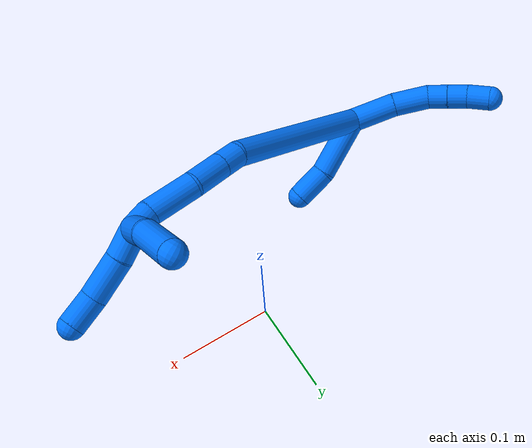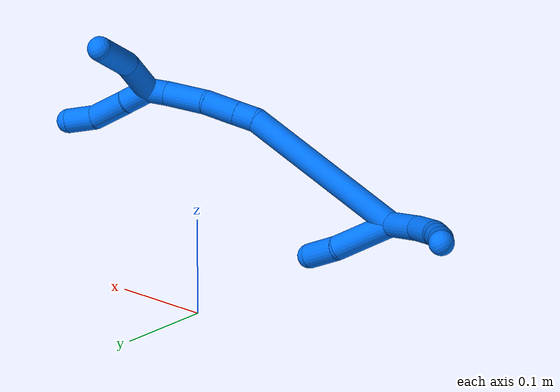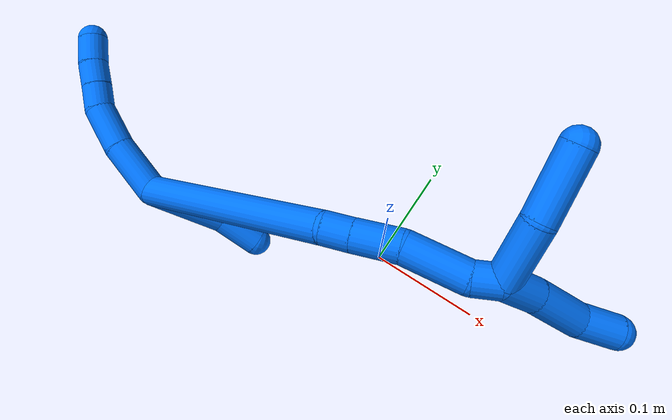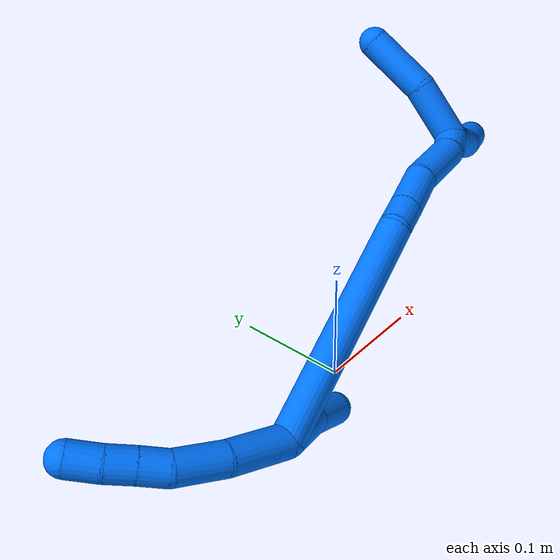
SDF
<sdf version="1.7">
 <world name="default">
  <model name="14">
   <static>0</static>
   <link name="14">
    <collision name="collision-cylinder-e_1_2_8">
     <pose>-0.006566 0.013766 0.017989 -0.653214 -0.282148 0.096139</pose>
     <geometry><cylinder><radius>0.0125</radius><length>0.047169</length></cylinder></geometry>
     <surface>
      <friction><ode><mu>1.16</mu><mu2>1.16</mu2><slip1>0</slip1><slip2>0</slip2></ode></friction>
      <contact><ode><kp>1e+06</kp><kd>1</kd><max_vel>0</max_vel><min_depth>0.001</min_depth></ode></contact>
     </surface>
    </collision>
    <visual name="visual-cylinder-e_1_2_8">
     <pose>-0.006566 0.013766 0.017989 -0.653214 -0.282148 0.096139</pose>
     <geometry><cylinder><radius>0.0125</radius><length>0.047169</length></cylinder></geometry>
     <material><ambient>0 0.462745 1 1</ambient></material>
    </visual>
    <collision name="collision-cylinder-e_2_8_9">
     <pose>-0.017922 0.040923 0.04838 -0.823649 -0.256633 0.112598</pose>
     <geometry><cylinder><radius>0.0125</radius><length>0.03774</length></cylinder></geometry>
     <surface>
      <friction><ode><mu>1.16</mu><mu2>1.16</mu2><slip1>0</slip1><slip2>0</slip2></ode></friction>
      <contact><ode><kp>1e+06</kp><kd>1</kd><max_vel>0</max_vel><min_depth>0.001</min_depth></ode></contact>
     </surface>
    </collision>
    <visual name="visual-cylinder-e_2_8_9">
     <pose>-0.017922 0.040923 0.04838 -0.823649 -0.256633 0.112598</pose>
     <geometry><cylinder><radius>0.0125</radius><length>0.03774</length></cylinder></geometry>
     <material><ambient>0 0.462745 1 1</ambient></material>
    </visual>
    <collision name="collision-cylinder-e_3_9_10">
     <pose>-0.02396 0.063652 0.06533 -1.11778 -0.119592 0.074848</pose>
     <geometry><cylinder><radius>0.0125</radius><length>0.020922</length></cylinder></geometry>
     <surface>
      <friction><ode><mu>1.16</mu><mu2>1.16</mu2><slip1>0</slip1><slip2>0</slip2></ode></friction>
      <contact><ode><kp>1e+06</kp><kd>1</kd><max_vel>0</max_vel><min_depth>0.001</min_depth></ode></contact>
     </surface>
    </collision>
    <visual name="visual-cylinder-e_3_9_10">
     <pose>-0.02396 0.063652 0.06533 -1.11778 -0.119592 0.074848</pose>
     <geometry><cylinder><radius>0.0125</radius><length>0.020922</length></cylinder></geometry>
     <material><ambient>0 0.462745 1 1</ambient></material>
    </visual>
    <collision name="collision-cylinder-e_4_10_11">
     <pose>-0.026777 0.082072 0.074468 -1.10263 -0.152938 0.094159</pose>
     <geometry><cylinder><radius>0.0125</radius><length>0.020592</length></cylinder></geometry>
     <surface>
      <friction><ode><mu>1.16</mu><mu2>1.16</mu2><slip1>0</slip1><slip2>0</slip2></ode></friction>
      <contact><ode><kp>1e+06</kp><kd>1</kd><max_vel>0</max_vel><min_depth>0.001</min_depth></ode></contact>
     </surface>
    </collision>
    <visual name="visual-cylinder-e_4_10_11">
     <pose>-0.026777 0.082072 0.074468 -1.10263 -0.152938 0.094159</pose>
     <geometry><cylinder><radius>0.0125</radius><length>0.020592</length></cylinder></geometry>
     <material><ambient>0 0.462745 1 1</ambient></material>
    </visual>
    <collision name="collision-cylinder-e_5_11_6">
     <pose>-0.029752 0.102148 0.083073 -1.2208 -0.119565 0.083688</pose>
     <geometry><cylinder><radius>0.0125</radius><length>0.023576</length></cylinder></geometry>
     <surface>
      <friction><ode><mu>1.16</mu><mu2>1.16</mu2><slip1>0</slip1><slip2>0</slip2></ode></friction>
      <contact><ode><kp>1e+06</kp><kd>1</kd><max_vel>0</max_vel><min_depth>0.001</min_depth></ode></contact>
     </surface>
    </collision>
    <visual name="visual-cylinder-e_5_11_6">
     <pose>-0.029752 0.102148 0.083073 -1.2208 -0.119565 0.083688</pose>
     <geometry><cylinder><radius>0.0125</radius><length>0.023576</length></cylinder></geometry>
     <material><ambient>0 0.462745 1 1</ambient></material>
    </visual>
    <collision name="collision-cylinder-e_1_2_12">
     <pose>-0.000113 -0.000426 -0.031971 3.12826 -0.003523 -0.516548</pose>
     <geometry><cylinder><radius>0.0125</radius><length>0.063947</length></cylinder></geometry>
     <surface>
      <friction><ode><mu>1.16</mu><mu2>1.16</mu2><slip1>0</slip1><slip2>0</slip2></ode></friction>
      <contact><ode><kp>1e+06</kp><kd>1</kd><max_vel>0</max_vel><min_depth>0.001</min_depth></ode></contact>
     </surface>
    </collision>
    <visual name="visual-cylinder-e_1_2_12">
     <pose>-0.000113 -0.000426 -0.031971 3.12826 -0.003523 -0.516548</pose>
     <geometry><cylinder><radius>0.0125</radius><length>0.063947</length></cylinder></geometry>
     <material><ambient>0 0.462745 1 1</ambient></material>
    </visual>
    <collision name="collision-cylinder-e_2_12_5">
     <pose>0.001444 -0.005496 -0.081279 2.87991 0.092733 0.677988</pose>
     <geometry><cylinder><radius>0.0125</radius><length>0.036053</length></cylinder></geometry>
     <surface>
      <friction><ode><mu>1.16</mu><mu2>1.16</mu2><slip1>0</slip1><slip2>0</slip2></ode></friction>
      <contact><ode><kp>1e+06</kp><kd>1</kd><max_vel>0</max_vel><min_depth>0.001</min_depth></ode></contact>
     </surface>
    </collision>
    <visual name="visual-cylinder-e_2_12_5">
     <pose>0.001444 -0.005496 -0.081279 2.87991 0.092733 0.677988</pose>
     <geometry><cylinder><radius>0.0125</radius><length>0.036053</length></cylinder></geometry>
     <material><ambient>0 0.462745 1 1</ambient></material>
    </visual>
    <collision name="collision-cylinder-e_1_2_13">
     <pose>0.074262 -0.006654 -0.046105 2.99825 1.01056 2.88347</pose>
     <geometry><cylinder><radius>0.0125</radius><length>0.175325</length></cylinder></geometry>
     <surface>
      <friction><ode><mu>1.16</mu><mu2>1.16</mu2><slip1>0</slip1><slip2>0</slip2></ode></friction>
      <contact><ode><kp>1e+06</kp><kd>1</kd><max_vel>0</max_vel><min_depth>0.001</min_depth></ode></contact>
     </surface>
    </collision>
    <visual name="visual-cylinder-e_1_2_13">
     <pose>0.074262 -0.006654 -0.046105 2.99825 1.01056 2.88347</pose>
     <geometry><cylinder><radius>0.0125</radius><length>0.175325</length></cylinder></geometry>
     <material><ambient>0 0.462745 1 1</ambient></material>
    </visual>
    <collision name="collision-cylinder-e_2_13_14">
     <pose>0.155563 -0.013743 -0.100517 3.08937 0.702297 2.99926</pose>
     <geometry><cylinder><radius>0.0125</radius><length>0.021795</length></cylinder></geometry>
     <surface>
      <friction><ode><mu>1.16</mu><mu2>1.16</mu2><slip1>0</slip1><slip2>0</slip2></ode></friction>
      <contact><ode><kp>1e+06</kp><kd>1</kd><max_vel>0</max_vel><min_depth>0.001</min_depth></ode></contact>
     </surface>
    </collision>
    <visual name="visual-cylinder-e_2_13_14">
     <pose>0.155563 -0.013743 -0.100517 3.08937 0.702297 2.99926</pose>
     <geometry><cylinder><radius>0.0125</radius><length>0.021795</length></cylinder></geometry>
     <material><ambient>0 0.462745 1 1</ambient></material>
    </visual>
    <collision name="collision-cylinder-e_3_14_15">
     <pose>0.174137 -0.014505 -0.121978 3.11665 0.719751 3.07532</pose>
     <geometry><cylinder><radius>0.0125</radius><length>0.034995</length></cylinder></geometry>
     <surface>
      <friction><ode><mu>1.16</mu><mu2>1.16</mu2><slip1>0</slip1><slip2>0</slip2></ode></friction>
      <contact><ode><kp>1e+06</kp><kd>1</kd><max_vel>0</max_vel><min_depth>0.001</min_depth></ode></contact>
     </surface>
    </collision>
    <visual name="visual-cylinder-e_3_14_15">
     <pose>0.174137 -0.014505 -0.121978 3.11665 0.719751 3.07532</pose>
     <geometry><cylinder><radius>0.0125</radius><length>0.034995</length></cylinder></geometry>
     <material><ambient>0 0.462745 1 1</ambient></material>
    </visual>
    <collision name="collision-cylinder-e_4_15_16">
     <pose>0.197918 -0.019555 -0.154738 2.90527 0.545747 2.33921</pose>
     <geometry><cylinder><radius>0.0125</radius><length>0.047189</length></cylinder></geometry>
     <surface>
      <friction><ode><mu>1.16</mu><mu2>1.16</mu2><slip1>0</slip1><slip2>0</slip2></ode></friction>
      <contact><ode><kp>1e+06</kp><kd>1</kd><max_vel>0</max_vel><min_depth>0.001</min_depth></ode></contact>
     </surface>
    </collision>
    <visual name="visual-cylinder-e_4_15_16">
     <pose>0.197918 -0.019555 -0.154738 2.90527 0.545747 2.33921</pose>
     <geometry><cylinder><radius>0.0125</radius><length>0.047189</length></cylinder></geometry>
     <material><ambient>0 0.462745 1 1</ambient></material>
    </visual>
    <collision name="collision-cylinder-e_5_16_1">
     <pose>0.215845 -0.022945 -0.182891 -2.98697 0.58107 -2.63457</pose>
     <geometry><cylinder><radius>0.0125</radius><length>0.020696</length></cylinder></geometry>
     <surface>
      <friction><ode><mu>1.16</mu><mu2>1.16</mu2><slip1>0</slip1><slip2>0</slip2></ode></friction>
      <contact><ode><kp>1e+06</kp><kd>1</kd><max_vel>0</max_vel><min_depth>0.001</min_depth></ode></contact>
     </surface>
    </collision>
    <visual name="visual-cylinder-e_5_16_1">
     <pose>0.215845 -0.022945 -0.182891 -2.98697 0.58107 -2.63457</pose>
     <geometry><cylinder><radius>0.0125</radius><length>0.020696</length></cylinder></geometry>
     <material><ambient>0 0.462745 1 1</ambient></material>
    </visual>
    <collision name="collision-cylinder-e_1_1_17">
     <pose>0.220972 -0.021606 -0.205574 -3.1411 -0.039127 3.11647</pose>
     <geometry><cylinder><radius>0.0125</radius><length>0.028295</length></cylinder></geometry>
     <surface>
      <friction><ode><mu>1.16</mu><mu2>1.16</mu2><slip1>0</slip1><slip2>0</slip2></ode></friction>
      <contact><ode><kp>1e+06</kp><kd>1</kd><max_vel>0</max_vel><min_depth>0.001</min_depth></ode></contact>
     </surface>
    </collision>
    <visual name="visual-cylinder-e_1_1_17">
     <pose>0.220972 -0.021606 -0.205574 -3.1411 -0.039127 3.11647</pose>
     <geometry><cylinder><radius>0.0125</radius><length>0.028295</length></cylinder></geometry>
     <material><ambient>0 0.462745 1 1</ambient></material>
    </visual>
    <collision name="collision-cylinder-e_2_17_18">
     <pose>0.219942 -0.023951 -0.240181 3.0272 -0.023115 -0.398353</pose>
     <geometry><cylinder><radius>0.0125</radius><length>0.041221</length></cylinder></geometry>
     <surface>
      <friction><ode><mu>1.16</mu><mu2>1.16</mu2><slip1>0</slip1><slip2>0</slip2></ode></friction>
      <contact><ode><kp>1e+06</kp><kd>1</kd><max_vel>0</max_vel><min_depth>0.001</min_depth></ode></contact>
     </surface>
    </collision>
    <visual name="visual-cylinder-e_2_17_18">
     <pose>0.219942 -0.023951 -0.240181 3.0272 -0.023115 -0.398353</pose>
     <geometry><cylinder><radius>0.0125</radius><length>0.041221</length></cylinder></geometry>
     <material><ambient>0 0.462745 1 1</ambient></material>
    </visual>
    <collision name="collision-cylinder-e_3_18_4">
     <pose>0.223526 -0.02636 -0.275343 3.13771 0.269658 3.11296</pose>
     <geometry><cylinder><radius>0.0125</radius><length>0.030484</length></cylinder></geometry>
     <surface>
      <friction><ode><mu>1.16</mu><mu2>1.16</mu2><slip1>0</slip1><slip2>0</slip2></ode></friction>
      <contact><ode><kp>1e+06</kp><kd>1</kd><max_vel>0</max_vel><min_depth>0.001</min_depth></ode></contact>
     </surface>
    </collision>
    <visual name="visual-cylinder-e_3_18_4">
     <pose>0.223526 -0.02636 -0.275343 3.13771 0.269658 3.11296</pose>
     <geometry><cylinder><radius>0.0125</radius><length>0.030484</length></cylinder></geometry>
     <material><ambient>0 0.462745 1 1</ambient></material>
    </visual>
    <collision name="collision-cylinder-e_1_1_19">
     <pose>0.237179 -0.00377 -0.187713 -1.36503 0.709601 -0.584998</pose>
     <geometry><cylinder><radius>0.0125</radius><length>0.048052</length></cylinder></geometry>
     <surface>
      <friction><ode><mu>1.16</mu><mu2>1.16</mu2><slip1>0</slip1><slip2>0</slip2></ode></friction>
      <contact><ode><kp>1e+06</kp><kd>1</kd><max_vel>0</max_vel><min_depth>0.001</min_depth></ode></contact>
     </surface>
    </collision>
    <visual name="visual-cylinder-e_1_1_19">
     <pose>0.237179 -0.00377 -0.187713 -1.36503 0.709601 -0.584998</pose>
     <geometry><cylinder><radius>0.0125</radius><length>0.048052</length></cylinder></geometry>
     <material><ambient>0 0.462745 1 1</ambient></material>
    </visual>
    <collision name="collision-cylinder-e_2_19_3">
     <pose>0.264671 0.037178 -0.183202 -1.53671 0.473258 -0.457955</pose>
     <geometry><cylinder><radius>0.0125</radius><length>0.051948</length></cylinder></geometry>
     <surface>
      <friction><ode><mu>1.16</mu><mu2>1.16</mu2><slip1>0</slip1><slip2>0</slip2></ode></friction>
      <contact><ode><kp>1e+06</kp><kd>1</kd><max_vel>0</max_vel><min_depth>0.001</min_depth></ode></contact>
     </surface>
    </collision>
    <visual name="visual-cylinder-e_2_19_3">
     <pose>0.264671 0.037178 -0.183202 -1.53671 0.473258 -0.457955</pose>
     <geometry><cylinder><radius>0.0125</radius><length>0.051948</length></cylinder></geometry>
     <material><ambient>0 0.462745 1 1</ambient></material>
    </visual>
    <collision name="collision-sphere-3">
     <pose>0.27651 0.060283 -0.182414 0 -0 0</pose>
     <geometry><sphere><radius>0.0125</radius></sphere></geometry>
     <surface>
      <friction><ode><mu>1.16</mu><mu2>1.16</mu2><slip1>0</slip1><slip2>0</slip2></ode></friction>
      <contact><ode><kp>1e+06</kp><kd>1</kd><max_vel>0</max_vel><min_depth>0.001</min_depth></ode></contact>
     </surface>
    </collision>
    <visual name="visual-sphere-3">
     <pose>0.27651 0.060283 -0.182414 0 -0 0</pose>
     <geometry><sphere><radius>0.0125</radius></sphere></geometry>
     <material><ambient>0 0.462745 1 1</ambient></material>
    </visual>
    <collision name="collision-sphere-19">
     <pose>0.252832 0.014072 -0.183989 0 -0 0</pose>
     <geometry><sphere><radius>0.0125</radius></sphere></geometry>
     <surface>
      <friction><ode><mu>1.16</mu><mu2>1.16</mu2><slip1>0</slip1><slip2>0</slip2></ode></friction>
      <contact><ode><kp>1e+06</kp><kd>1</kd><max_vel>0</max_vel><min_depth>0.001</min_depth></ode></contact>
     </surface>
    </collision>
    <visual name="visual-sphere-19">
     <pose>0.252832 0.014072 -0.183989 0 -0 0</pose>
     <geometry><sphere><radius>0.0125</radius></sphere></geometry>
     <material><ambient>0 0.462745 1 1</ambient></material>
    </visual>
    <collision name="collision-sphere-6">
     <pose>-0.031158 0.113142 0.087086 0 -0 0</pose>
     <geometry><sphere><radius>0.0125</radius></sphere></geometry>
     <surface>
      <friction><ode><mu>1.16</mu><mu2>1.16</mu2><slip1>0</slip1><slip2>0</slip2></ode></friction>
      <contact><ode><kp>1e+06</kp><kd>1</kd><max_vel>0</max_vel><min_depth>0.001</min_depth></ode></contact>
     </surface>
    </collision>
    <visual name="visual-sphere-6">
     <pose>-0.031158 0.113142 0.087086 0 -0 0</pose>
     <geometry><sphere><radius>0.0125</radius></sphere></geometry>
     <material><ambient>0 0.462745 1 1</ambient></material>
    </visual>
    <collision name="collision-sphere-11">
     <pose>-0.028345 0.091153 0.079059 0 -0 0</pose>
     <geometry><sphere><radius>0.0125</radius></sphere></geometry>
     <surface>
      <friction><ode><mu>1.16</mu><mu2>1.16</mu2><slip1>0</slip1><slip2>0</slip2></ode></friction>
      <contact><ode><kp>1e+06</kp><kd>1</kd><max_vel>0</max_vel><min_depth>0.001</min_depth></ode></contact>
     </surface>
    </collision>
    <visual name="visual-sphere-11">
     <pose>-0.028345 0.091153 0.079059 0 -0 0</pose>
     <geometry><sphere><radius>0.0125</radius></sphere></geometry>
     <material><ambient>0 0.462745 1 1</ambient></material>
    </visual>
    <collision name="collision-sphere-10">
     <pose>-0.025208 0.072991 0.069876 0 -0 0</pose>
     <geometry><sphere><radius>0.0125</radius></sphere></geometry>
     <surface>
      <friction><ode><mu>1.16</mu><mu2>1.16</mu2><slip1>0</slip1><slip2>0</slip2></ode></friction>
      <contact><ode><kp>1e+06</kp><kd>1</kd><max_vel>0</max_vel><min_depth>0.001</min_depth></ode></contact>
     </surface>
    </collision>
    <visual name="visual-sphere-10">
     <pose>-0.025208 0.072991 0.069876 0 -0 0</pose>
     <geometry><sphere><radius>0.0125</radius></sphere></geometry>
     <material><ambient>0 0.462745 1 1</ambient></material>
    </visual>
    <collision name="collision-sphere-9">
     <pose>-0.022712 0.054314 0.060784 0 -0 0</pose>
     <geometry><sphere><radius>0.0125</radius></sphere></geometry>
     <surface>
      <friction><ode><mu>1.16</mu><mu2>1.16</mu2><slip1>0</slip1><slip2>0</slip2></ode></friction>
      <contact><ode><kp>1e+06</kp><kd>1</kd><max_vel>0</max_vel><min_depth>0.001</min_depth></ode></contact>
     </surface>
    </collision>
    <visual name="visual-sphere-9">
     <pose>-0.022712 0.054314 0.060784 0 -0 0</pose>
     <geometry><sphere><radius>0.0125</radius></sphere></geometry>
     <material><ambient>0 0.462745 1 1</ambient></material>
    </visual>
    <collision name="collision-sphere-2">
     <geometry><sphere><radius>0.0125</radius></sphere></geometry>
     <surface>
      <friction><ode><mu>1.16</mu><mu2>1.16</mu2><slip1>0</slip1><slip2>0</slip2></ode></friction>
      <contact><ode><kp>1e+06</kp><kd>1</kd><max_vel>0</max_vel><min_depth>0.001</min_depth></ode></contact>
     </surface>
    </collision>
    <visual name="visual-sphere-2">
     <geometry><sphere><radius>0.0125</radius></sphere></geometry>
     <material><ambient>0 0.462745 1 1</ambient></material>
    </visual>
    <collision name="collision-sphere-8">
     <pose>-0.013133 0.027533 0.035977 0 -0 0</pose>
     <geometry><sphere><radius>0.0125</radius></sphere></geometry>
     <surface>
      <friction><ode><mu>1.16</mu><mu2>1.16</mu2><slip1>0</slip1><slip2>0</slip2></ode></friction>
      <contact><ode><kp>1e+06</kp><kd>1</kd><max_vel>0</max_vel><min_depth>0.001</min_depth></ode></contact>
     </surface>
    </collision>
    <visual name="visual-sphere-8">
     <pose>-0.013133 0.027533 0.035977 0 -0 0</pose>
     <geometry><sphere><radius>0.0125</radius></sphere></geometry>
     <material><ambient>0 0.462745 1 1</ambient></material>
    </visual>
    <collision name="collision-sphere-12">
     <pose>-0.000225 -0.000853 -0.063941 0 -0 0</pose>
     <geometry><sphere><radius>0.0125</radius></sphere></geometry>
     <surface>
      <friction><ode><mu>1.16</mu><mu2>1.16</mu2><slip1>0</slip1><slip2>0</slip2></ode></friction>
      <contact><ode><kp>1e+06</kp><kd>1</kd><max_vel>0</max_vel><min_depth>0.001</min_depth></ode></contact>
     </surface>
    </collision>
    <visual name="visual-sphere-12">
     <pose>-0.000225 -0.000853 -0.063941 0 -0 0</pose>
     <geometry><sphere><radius>0.0125</radius></sphere></geometry>
     <material><ambient>0 0.462745 1 1</ambient></material>
    </visual>
    <collision name="collision-sphere-5">
     <pose>0.003113 -0.01014 -0.098617 0 -0 0</pose>
     <geometry><sphere><radius>0.0125</radius></sphere></geometry>
     <surface>
      <friction><ode><mu>1.16</mu><mu2>1.16</mu2><slip1>0</slip1><slip2>0</slip2></ode></friction>
      <contact><ode><kp>1e+06</kp><kd>1</kd><max_vel>0</max_vel><min_depth>0.001</min_depth></ode></contact>
     </surface>
    </collision>
    <visual name="visual-sphere-5">
     <pose>0.003113 -0.01014 -0.098617 0 -0 0</pose>
     <geometry><sphere><radius>0.0125</radius></sphere></geometry>
     <material><ambient>0 0.462745 1 1</ambient></material>
    </visual>
    <collision name="collision-sphere-13">
     <pose>0.148524 -0.013308 -0.09221 0 -0 0</pose>
     <geometry><sphere><radius>0.0125</radius></sphere></geometry>
     <surface>
      <friction><ode><mu>1.16</mu><mu2>1.16</mu2><slip1>0</slip1><slip2>0</slip2></ode></friction>
      <contact><ode><kp>1e+06</kp><kd>1</kd><max_vel>0</max_vel><min_depth>0.001</min_depth></ode></contact>
     </surface>
    </collision>
    <visual name="visual-sphere-13">
     <pose>0.148524 -0.013308 -0.09221 0 -0 0</pose>
     <geometry><sphere><radius>0.0125</radius></sphere></geometry>
     <material><ambient>0 0.462745 1 1</ambient></material>
    </visual>
    <collision name="collision-sphere-14">
     <pose>0.162602 -0.014177 -0.108825 0 -0 0</pose>
     <geometry><sphere><radius>0.0125</radius></sphere></geometry>
     <surface>
      <friction><ode><mu>1.16</mu><mu2>1.16</mu2><slip1>0</slip1><slip2>0</slip2></ode></friction>
      <contact><ode><kp>1e+06</kp><kd>1</kd><max_vel>0</max_vel><min_depth>0.001</min_depth></ode></contact>
     </surface>
    </collision>
    <visual name="visual-sphere-14">
     <pose>0.162602 -0.014177 -0.108825 0 -0 0</pose>
     <geometry><sphere><radius>0.0125</radius></sphere></geometry>
     <material><ambient>0 0.462745 1 1</ambient></material>
    </visual>
    <collision name="collision-sphere-15">
     <pose>0.185671 -0.014833 -0.135132 0 -0 0</pose>
     <geometry><sphere><radius>0.0125</radius></sphere></geometry>
     <surface>
      <friction><ode><mu>1.16</mu><mu2>1.16</mu2><slip1>0</slip1><slip2>0</slip2></ode></friction>
      <contact><ode><kp>1e+06</kp><kd>1</kd><max_vel>0</max_vel><min_depth>0.001</min_depth></ode></contact>
     </surface>
    </collision>
    <visual name="visual-sphere-15">
     <pose>0.185671 -0.014833 -0.135132 0 -0 0</pose>
     <geometry><sphere><radius>0.0125</radius></sphere></geometry>
     <material><ambient>0 0.462745 1 1</ambient></material>
    </visual>
    <collision name="collision-sphere-16">
     <pose>0.210165 -0.024277 -0.174345 0 -0 0</pose>
     <geometry><sphere><radius>0.0125</radius></sphere></geometry>
     <surface>
      <friction><ode><mu>1.16</mu><mu2>1.16</mu2><slip1>0</slip1><slip2>0</slip2></ode></friction>
      <contact><ode><kp>1e+06</kp><kd>1</kd><max_vel>0</max_vel><min_depth>0.001</min_depth></ode></contact>
     </surface>
    </collision>
    <visual name="visual-sphere-16">
     <pose>0.210165 -0.024277 -0.174345 0 -0 0</pose>
     <geometry><sphere><radius>0.0125</radius></sphere></geometry>
     <material><ambient>0 0.462745 1 1</ambient></material>
    </visual>
    <collision name="collision-sphere-1">
     <pose>0.221525 -0.021613 -0.191437 0 -0 0</pose>
     <geometry><sphere><radius>0.0125</radius></sphere></geometry>
     <surface>
      <friction><ode><mu>1.16</mu><mu2>1.16</mu2><slip1>0</slip1><slip2>0</slip2></ode></friction>
      <contact><ode><kp>1e+06</kp><kd>1</kd><max_vel>0</max_vel><min_depth>0.001</min_depth></ode></contact>
     </surface>
    </collision>
    <visual name="visual-sphere-1">
     <pose>0.221525 -0.021613 -0.191437 0 -0 0</pose>
     <geometry><sphere><radius>0.0125</radius></sphere></geometry>
     <material><ambient>0 0.462745 1 1</ambient></material>
    </visual>
    <collision name="collision-sphere-18">
     <pose>0.219466 -0.026302 -0.260652 0 -0 0</pose>
     <geometry><sphere><radius>0.0125</radius></sphere></geometry>
     <surface>
      <friction><ode><mu>1.16</mu><mu2>1.16</mu2><slip1>0</slip1><slip2>0</slip2></ode></friction>
      <contact><ode><kp>1e+06</kp><kd>1</kd><max_vel>0</max_vel><min_depth>0.001</min_depth></ode></contact>
     </surface>
    </collision>
    <visual name="visual-sphere-18">
     <pose>0.219466 -0.026302 -0.260652 0 -0 0</pose>
     <geometry><sphere><radius>0.0125</radius></sphere></geometry>
     <material><ambient>0 0.462745 1 1</ambient></material>
    </visual>
    <collision name="collision-sphere-17">
     <pose>0.220418 -0.021599 -0.219711 0 -0 0</pose>
     <geometry><sphere><radius>0.0125</radius></sphere></geometry>
     <surface>
      <friction><ode><mu>1.16</mu><mu2>1.16</mu2><slip1>0</slip1><slip2>0</slip2></ode></friction>
      <contact><ode><kp>1e+06</kp><kd>1</kd><max_vel>0</max_vel><min_depth>0.001</min_depth></ode></contact>
     </surface>
    </collision>
    <visual name="visual-sphere-17">
     <pose>0.220418 -0.021599 -0.219711 0 -0 0</pose>
     <geometry><sphere><radius>0.0125</radius></sphere></geometry>
     <material><ambient>0 0.462745 1 1</ambient></material>
    </visual>
    <collision name="collision-sphere-4">
     <pose>0.227586 -0.026417 -0.290034 0 -0 0</pose>
     <geometry><sphere><radius>0.0125</radius></sphere></geometry>
     <surface>
      <friction><ode><mu>1.16</mu><mu2>1.16</mu2><slip1>0</slip1><slip2>0</slip2></ode></friction>
      <contact><ode><kp>1e+06</kp><kd>1</kd><max_vel>0</max_vel><min_depth>0.001</min_depth></ode></contact>
     </surface>
    </collision>
    <visual name="visual-sphere-4">
     <pose>0.227586 -0.026417 -0.290034 0 -0 0</pose>
     <geometry><sphere><radius>0.0125</radius></sphere></geometry>
     <material><ambient>0 0.462745 1 1</ambient></material>
    </visual>
    <inertial>
     <pose>0.107859 0.0045 -0.087625 0 -0 0</pose>
     <mass>0.75</mass>
     <inertia>
      <ixx>-0.000113</ixx>
      <ixy>0</ixy>
      <ixz>0</ixz>
      <iyy>0.000526</iyy>
      <iyz>0</iyz>
      <izz>-0.000426</izz>
     </inertia>
    </inertial>
   </link>
   <pose>-0.173338 -0.092827 0.111479 0.279312 -1.03594 0.082926</pose>
  </model>
 </world>
</sdf>
